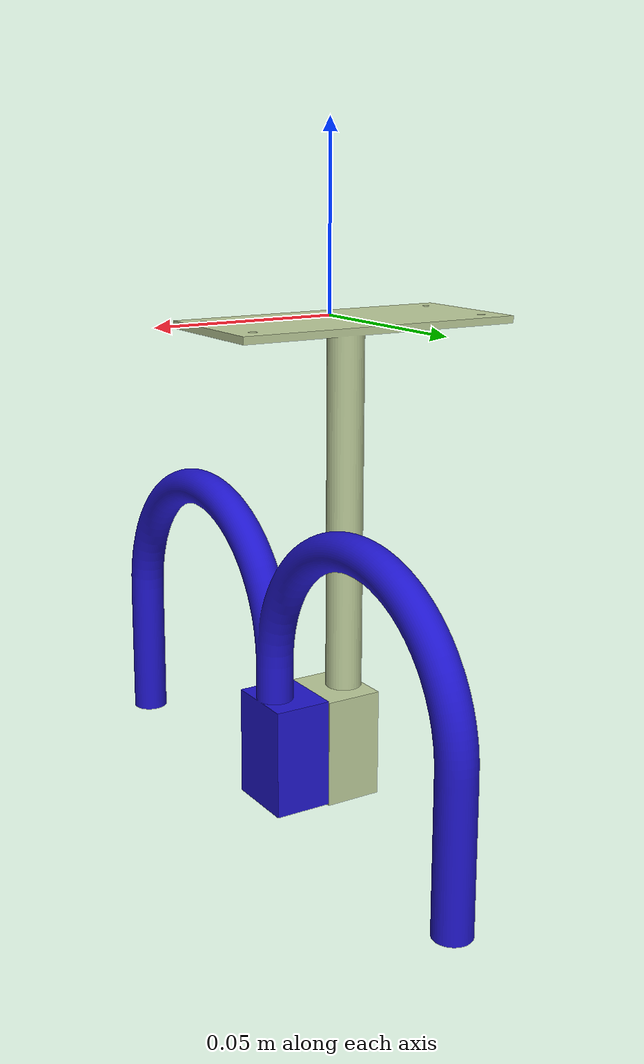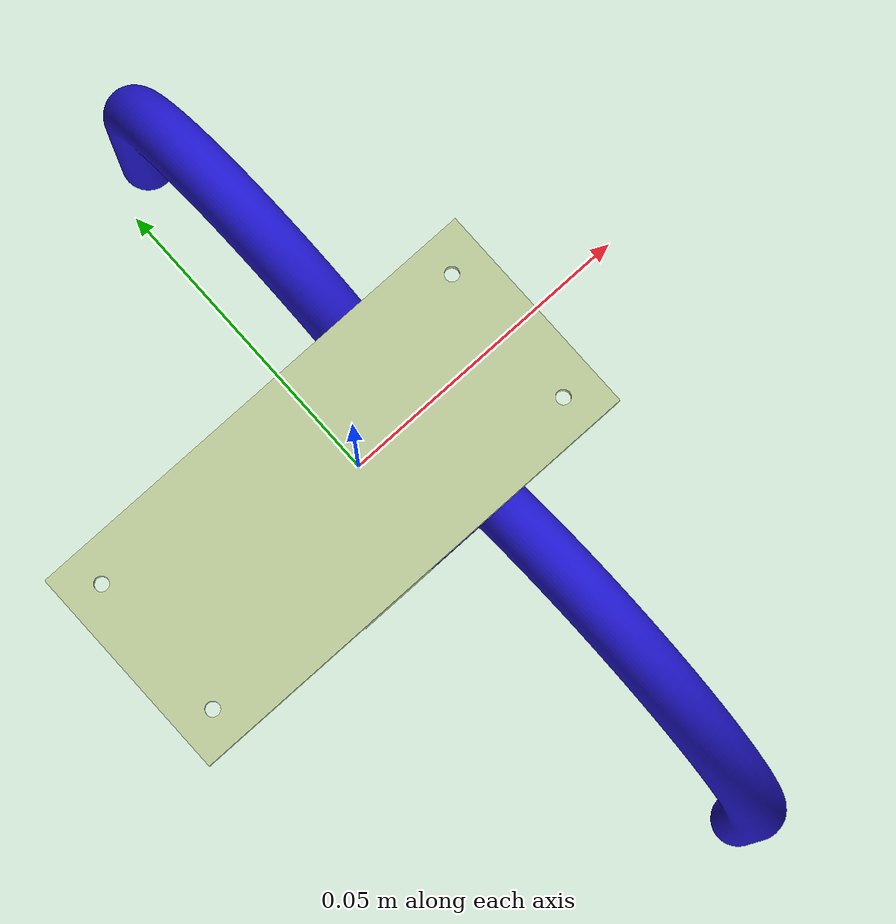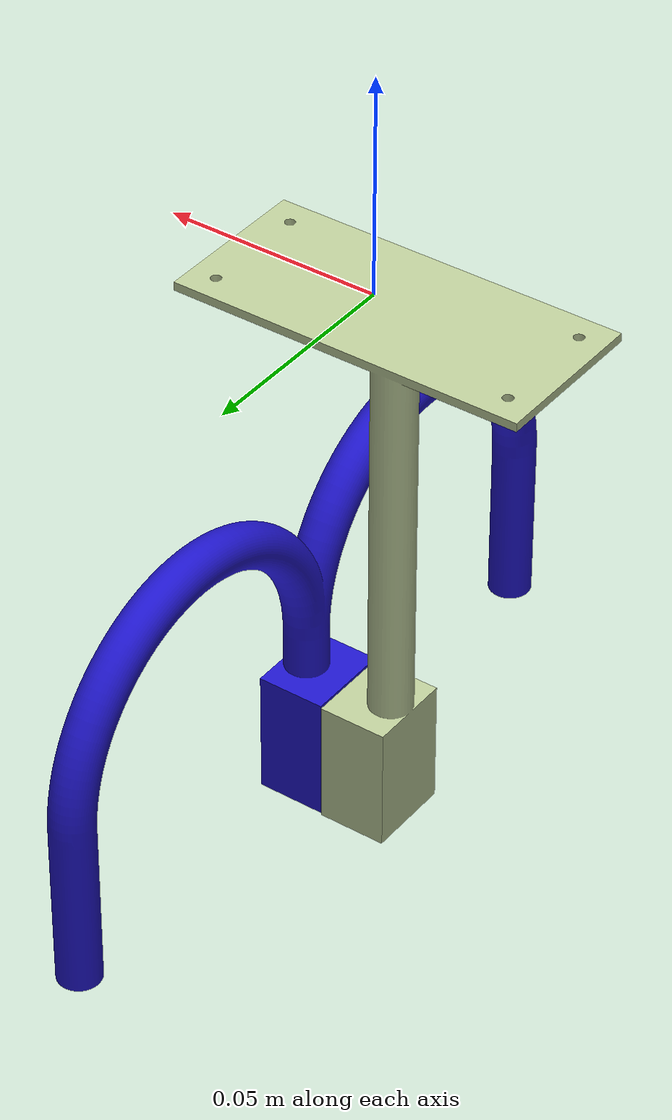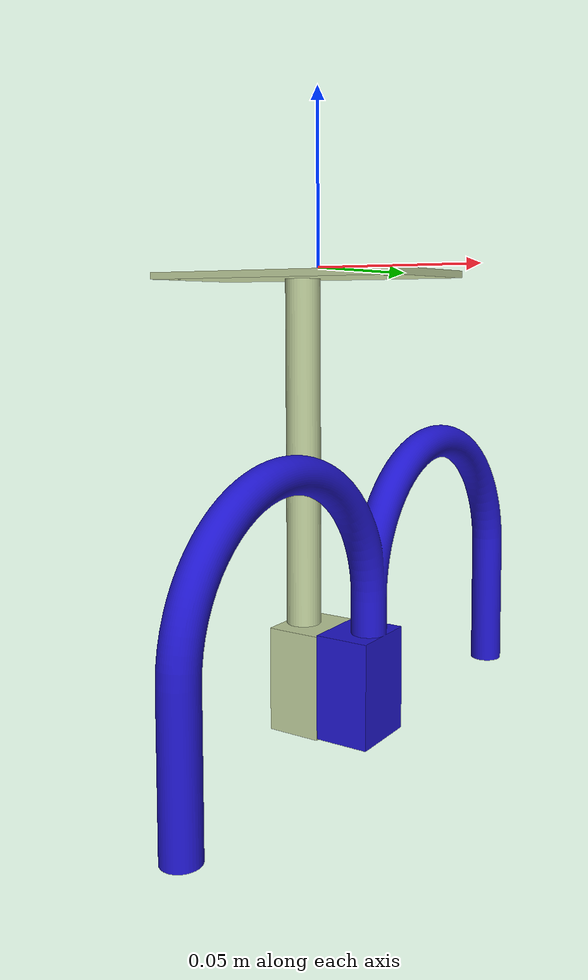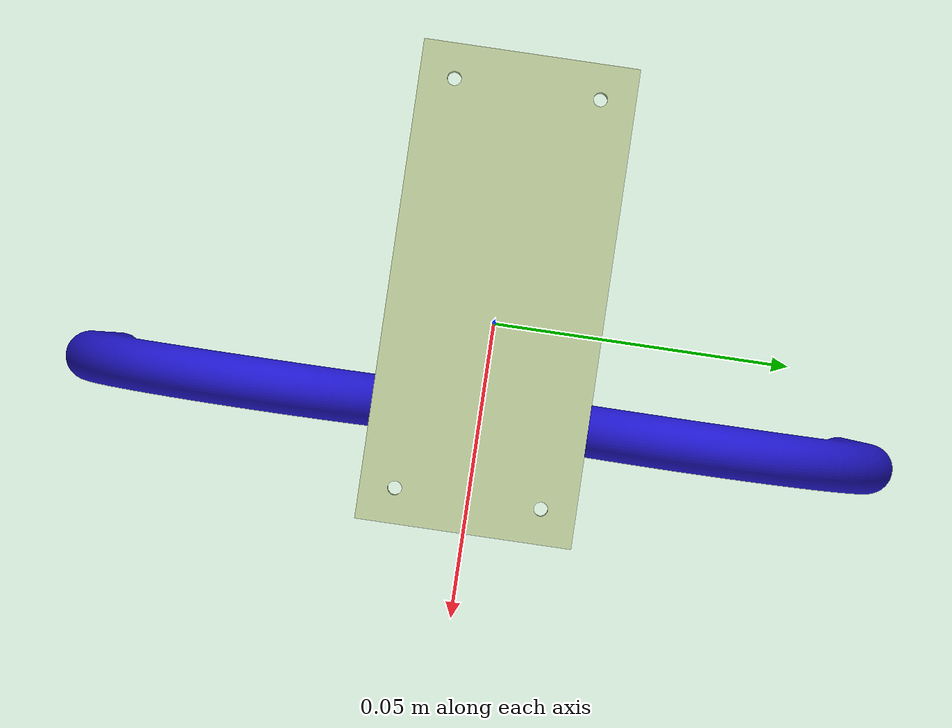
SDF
<?xml version="1.0"?>
<sdf version="1.9">
    <model name="gancho">
        <link name="sustentacao_gancho">
            <inertial>
                <mass>0.005</mass>
                <inertia>
                    <ixx>8.33e-06</ixx>
                    <ixy>0</ixy>
                    <ixz>0</ixz>
                    <iyy>8.33e-06</iyy>
                    <iyz>0</iyz>
                    <izz>8.33e-06</izz>
                </inertia>
            </inertial>
            <visual name='sustentacao_gancho_visual'>
                <pose>0 0 0 0 0 -1.5707</pose>
                <geometry>
                    <mesh>
                        <uri>model://gancho/meshes/suporte_gancho_eletroquad.dae</uri>
                    </mesh>
                </geometry>

            </visual>
        </link>

        <model name="gancho_eletroquad">
            <pose>0.016 0.001 -0.1325 0 0 -3.14159</pose>
            <static>false</static>
            <link name="link">
            <inertial>
                <pose>0 0 0.0 0 0 0</pose>
                <mass>0.01</mass>
                <inertia>
                <ixx>0.000001</ixx>
                <ixy>0</ixy>
                <ixz>0</ixz>
                <iyy>0.000001</iyy>
                <iyz>0</iyz>
                <izz>0.000001</izz>
                </inertia>
            </inertial>

            <collision name="collision_middle">
                <pose>0 0 0 0 0 0</pose>
                <geometry>
                <mesh>
                    <uri>model://gancho/meshes/gancho_eletroquad.dae</uri>
                </mesh>
                </geometry>
                <surface>
                <contact>
                    <ode>
                    <min_depth>0.001</min_depth>
                    <max_vel>0</max_vel>
                    </ode>
                </contact>
                <friction>
                    <ode/>
                </friction>
                </surface>
            </collision>

            <visual name="visual">
                <pose>0 0 0 0 0 0</pose>
                <geometry>
                <mesh>
                    <uri>model://gancho/meshes/gancho_eletroquad.dae</uri>
                </mesh>
                </geometry>
            </visual>
            </link>
        </model>

        <plugin filename="gz-sim-detachable-joint-system"
                name="gz::sim::systems::DetachableJoint">
            <parent_link>sustentacao_gancho</parent_link>
            <child_model>gancho_eletroquad</child_model>
            <child_link>link</child_link>
            <detach_topic>/gancho/detach</detach_topic>
            <attach_topic>/gancho/attach</attach_topic>
            <output_topic>/gancho/state</output_topic>
        </plugin>

        <frame name="mount_point"/>
    </model>
</sdf>
